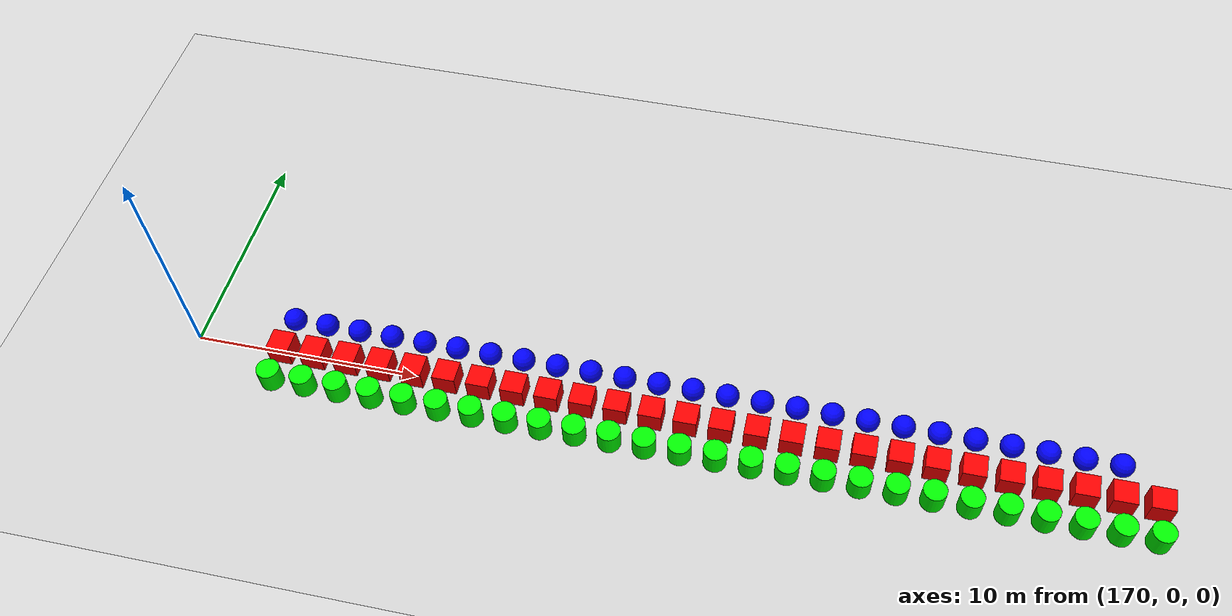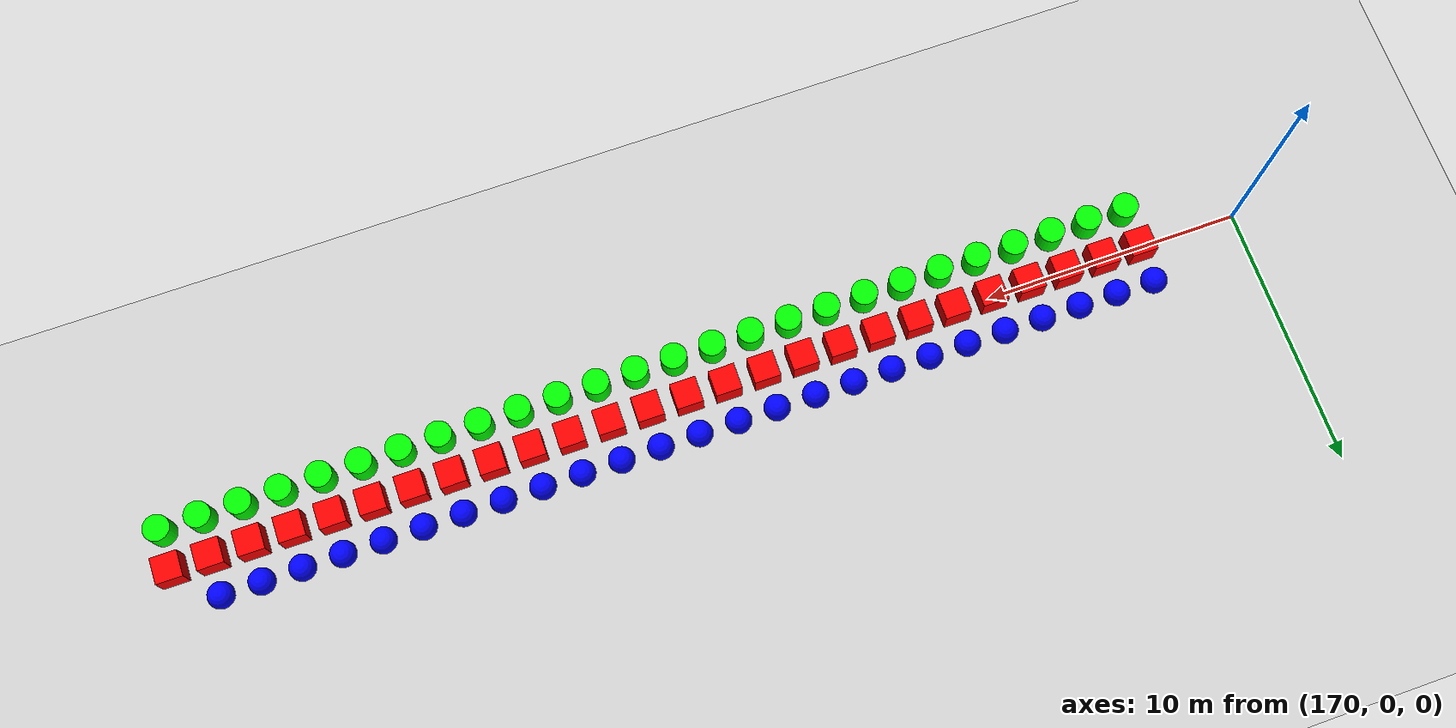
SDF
<sdf version="1.6">
 <world name="shapes">
  <model name="ground_plane">
   <static>true</static>
   <link name="link">
    <collision name="collision">
     <geometry><plane><normal>0 0 1</normal><size>100 100</size></plane></geometry>
    </collision>
    <visual name="visual">
     <geometry><plane><normal>0 0 1</normal><size>100 100</size></plane></geometry>
     <material>
      <ambient>0.8 0.8 0.8 1</ambient>
      <diffuse>0.8 0.8 0.8 1</diffuse>
      <specular>0.8 0.8 0.8 1</specular>
     </material>
    </visual>
   </link>
  </model>
  <model name="box_616">
   <static>false</static>
   <pose>174.0 0 0.5 0 0 0</pose>
   <link name="box_link">
    <inertial>
     <inertia><ixx>1</ixx><ixy>0</ixy><ixz>0</ixz><iyy>1</iyy><iyz>0</iyz><izz>1</izz></inertia>
     <mass>1.0</mass>
    </inertial>
    <collision name="box_collision"><geometry><box><size>1 1 1</size></box></geometry></collision>
    <visual name="box_visual">
     <geometry><box><size>1 1 1</size></box></geometry>
     <material><ambient>1 0 0 1</ambient><diffuse>1 0 0 1</diffuse><specular>1 0 0 1</specular></material>
    </visual>
   </link>
  </model>
  <model name="cylinder_616">
   <static>false</static>
   <pose>174.0 -1.5 0.5 0 0 0</pose>
   <link name="cylinder_link">
    <inertial>
     <inertia><ixx>2</ixx><ixy>0</ixy><ixz>0</ixz><iyy>2</iyy><iyz>0</iyz><izz>2</izz></inertia>
     <mass>2.0</mass>
    </inertial>
    <collision name="cylinder_collision">
     <geometry><cylinder><radius>0.5</radius><length>1.0</length></cylinder></geometry>
    </collision>
    <visual name="cylinder_visual">
     <geometry><cylinder><radius>0.5</radius><length>1.0</length></cylinder></geometry>
     <material><ambient>0 1 0 1</ambient><diffuse>0 1 0 1</diffuse><specular>0 1 0 1</specular></material>
    </visual>
   </link>
  </model>
  <model name="sphere_616">
   <static>false</static>
   <pose>174.0 1.5 0.5 0 0 0</pose>
   <link name="sphere_link">
    <inertial>
     <inertia><ixx>3</ixx><ixy>0</ixy><ixz>0</ixz><iyy>3</iyy><iyz>0</iyz><izz>3</izz></inertia>
     <mass>3.0</mass>
    </inertial>
    <collision name="sphere_collision"><geometry><sphere><radius>0.5</radius></sphere></geometry></collision>
    <visual name="sphere_visual">
     <geometry><sphere><radius>0.5</radius></sphere></geometry>
     <material><ambient>0 0 1 1</ambient><diffuse>0 0 1 1</diffuse><specular>0 0 1 1</specular></material>
    </visual>
   </link>
  </model>
  <model name="box_617">
   <static>false</static>
   <pose>175.5 0 0.5 0 0 0</pose>
   <link name="box_link">
    <inertial>
     <inertia><ixx>1</ixx><ixy>0</ixy><ixz>0</ixz><iyy>1</iyy><iyz>0</iyz><izz>1</izz></inertia>
     <mass>1.0</mass>
    </inertial>
    <collision name="box_collision"><geometry><box><size>1 1 1</size></box></geometry></collision>
    <visual name="box_visual">
     <geometry><box><size>1 1 1</size></box></geometry>
     <material><ambient>1 0 0 1</ambient><diffuse>1 0 0 1</diffuse><specular>1 0 0 1</specular></material>
    </visual>
   </link>
  </model>
  <model name="cylinder_617">
   <static>false</static>
   <pose>175.5 -1.5 0.5 0 0 0</pose>
   <link name="cylinder_link">
    <inertial>
     <inertia><ixx>2</ixx><ixy>0</ixy><ixz>0</ixz><iyy>2</iyy><iyz>0</iyz><izz>2</izz></inertia>
     <mass>2.0</mass>
    </inertial>
    <collision name="cylinder_collision">
     <geometry><cylinder><radius>0.5</radius><length>1.0</length></cylinder></geometry>
    </collision>
    <visual name="cylinder_visual">
     <geometry><cylinder><radius>0.5</radius><length>1.0</length></cylinder></geometry>
     <material><ambient>0 1 0 1</ambient><diffuse>0 1 0 1</diffuse><specular>0 1 0 1</specular></material>
    </visual>
   </link>
  </model>
  <model name="sphere_617">
   <static>false</static>
   <pose>175.5 1.5 0.5 0 0 0</pose>
   <link name="sphere_link">
    <inertial>
     <inertia><ixx>3</ixx><ixy>0</ixy><ixz>0</ixz><iyy>3</iyy><iyz>0</iyz><izz>3</izz></inertia>
     <mass>3.0</mass>
    </inertial>
    <collision name="sphere_collision"><geometry><sphere><radius>0.5</radius></sphere></geometry></collision>
    <visual name="sphere_visual">
     <geometry><sphere><radius>0.5</radius></sphere></geometry>
     <material><ambient>0 0 1 1</ambient><diffuse>0 0 1 1</diffuse><specular>0 0 1 1</specular></material>
    </visual>
   </link>
  </model>
  <model name="box_618">
   <static>false</static>
   <pose>177.0 0 0.5 0 0 0</pose>
   <link name="box_link">
    <inertial>
     <inertia><ixx>1</ixx><ixy>0</ixy><ixz>0</ixz><iyy>1</iyy><iyz>0</iyz><izz>1</izz></inertia>
     <mass>1.0</mass>
    </inertial>
    <collision name="box_collision"><geometry><box><size>1 1 1</size></box></geometry></collision>
    <visual name="box_visual">
     <geometry><box><size>1 1 1</size></box></geometry>
     <material><ambient>1 0 0 1</ambient><diffuse>1 0 0 1</diffuse><specular>1 0 0 1</specular></material>
    </visual>
   </link>
  </model>
  <model name="cylinder_618">
   <static>false</static>
   <pose>177.0 -1.5 0.5 0 0 0</pose>
   <link name="cylinder_link">
    <inertial>
     <inertia><ixx>2</ixx><ixy>0</ixy><ixz>0</ixz><iyy>2</iyy><iyz>0</iyz><izz>2</izz></inertia>
     <mass>2.0</mass>
    </inertial>
    <collision name="cylinder_collision">
     <geometry><cylinder><radius>0.5</radius><length>1.0</length></cylinder></geometry>
    </collision>
    <visual name="cylinder_visual">
     <geometry><cylinder><radius>0.5</radius><length>1.0</length></cylinder></geometry>
     <material><ambient>0 1 0 1</ambient><diffuse>0 1 0 1</diffuse><specular>0 1 0 1</specular></material>
    </visual>
   </link>
  </model>
  <model name="sphere_618">
   <static>false</static>
   <pose>177.0 1.5 0.5 0 0 0</pose>
   <link name="sphere_link">
    <inertial>
     <inertia><ixx>3</ixx><ixy>0</ixy><ixz>0</ixz><iyy>3</iyy><iyz>0</iyz><izz>3</izz></inertia>
     <mass>3.0</mass>
    </inertial>
    <collision name="sphere_collision"><geometry><sphere><radius>0.5</radius></sphere></geometry></collision>
    <visual name="sphere_visual">
     <geometry><sphere><radius>0.5</radius></sphere></geometry>
     <material><ambient>0 0 1 1</ambient><diffuse>0 0 1 1</diffuse><specular>0 0 1 1</specular></material>
    </visual>
   </link>
  </model>
  <model name="box_619">
   <static>false</static>
   <pose>178.5 0 0.5 0 0 0</pose>
   <link name="box_link">
    <inertial>
     <inertia><ixx>1</ixx><ixy>0</ixy><ixz>0</ixz><iyy>1</iyy><iyz>0</iyz><izz>1</izz></inertia>
     <mass>1.0</mass>
    </inertial>
    <collision name="box_collision"><geometry><box><size>1 1 1</size></box></geometry></collision>
    <visual name="box_visual">
     <geometry><box><size>1 1 1</size></box></geometry>
     <material><ambient>1 0 0 1</ambient><diffuse>1 0 0 1</diffuse><specular>1 0 0 1</specular></material>
    </visual>
   </link>
  </model>
  <model name="cylinder_619">
   <static>false</static>
   <pose>178.5 -1.5 0.5 0 0 0</pose>
   <link name="cylinder_link">
    <inertial>
     <inertia><ixx>2</ixx><ixy>0</ixy><ixz>0</ixz><iyy>2</iyy><iyz>0</iyz><izz>2</izz></inertia>
     <mass>2.0</mass>
    </inertial>
    <collision name="cylinder_collision">
     <geometry><cylinder><radius>0.5</radius><length>1.0</length></cylinder></geometry>
    </collision>
    <visual name="cylinder_visual">
     <geometry><cylinder><radius>0.5</radius><length>1.0</length></cylinder></geometry>
     <material><ambient>0 1 0 1</ambient><diffuse>0 1 0 1</diffuse><specular>0 1 0 1</specular></material>
    </visual>
   </link>
  </model>
  <model name="sphere_619">
   <static>false</static>
   <pose>178.5 1.5 0.5 0 0 0</pose>
   <link name="sphere_link">
    <inertial>
     <inertia><ixx>3</ixx><ixy>0</ixy><ixz>0</ixz><iyy>3</iyy><iyz>0</iyz><izz>3</izz></inertia>
     <mass>3.0</mass>
    </inertial>
    <collision name="sphere_collision"><geometry><sphere><radius>0.5</radius></sphere></geometry></collision>
    <visual name="sphere_visual">
     <geometry><sphere><radius>0.5</radius></sphere></geometry>
     <material><ambient>0 0 1 1</ambient><diffuse>0 0 1 1</diffuse><specular>0 0 1 1</specular></material>
    </visual>
   </link>
  </model>
  <model name="box_620">
   <static>false</static>
   <pose>180.0 0 0.5 0 0 0</pose>
   <link name="box_link">
    <inertial>
     <inertia><ixx>1</ixx><ixy>0</ixy><ixz>0</ixz><iyy>1</iyy><iyz>0</iyz><izz>1</izz></inertia>
     <mass>1.0</mass>
    </inertial>
    <collision name="box_collision"><geometry><box><size>1 1 1</size></box></geometry></collision>
    <visual name="box_visual">
     <geometry><box><size>1 1 1</size></box></geometry>
     <material><ambient>1 0 0 1</ambient><diffuse>1 0 0 1</diffuse><specular>1 0 0 1</specular></material>
    </visual>
   </link>
  </model>
  <model name="cylinder_620">
   <static>false</static>
   <pose>180.0 -1.5 0.5 0 0 0</pose>
   <link name="cylinder_link">
    <inertial>
     <inertia><ixx>2</ixx><ixy>0</ixy><ixz>0</ixz><iyy>2</iyy><iyz>0</iyz><izz>2</izz></inertia>
     <mass>2.0</mass>
    </inertial>
    <collision name="cylinder_collision">
     <geometry><cylinder><radius>0.5</radius><length>1.0</length></cylinder></geometry>
    </collision>
    <visual name="cylinder_visual">
     <geometry><cylinder><radius>0.5</radius><length>1.0</length></cylinder></geometry>
     <material><ambient>0 1 0 1</ambient><diffuse>0 1 0 1</diffuse><specular>0 1 0 1</specular></material>
    </visual>
   </link>
  </model>
  <model name="sphere_620">
   <static>false</static>
   <pose>180.0 1.5 0.5 0 0 0</pose>
   <link name="sphere_link">
    <inertial>
     <inertia><ixx>3</ixx><ixy>0</ixy><ixz>0</ixz><iyy>3</iyy><iyz>0</iyz><izz>3</izz></inertia>
     <mass>3.0</mass>
    </inertial>
    <collision name="sphere_collision"><geometry><sphere><radius>0.5</radius></sphere></geometry></collision>
    <visual name="sphere_visual">
     <geometry><sphere><radius>0.5</radius></sphere></geometry>
     <material><ambient>0 0 1 1</ambient><diffuse>0 0 1 1</diffuse><specular>0 0 1 1</specular></material>
    </visual>
   </link>
  </model>
  <model name="box_621">
   <static>false</static>
   <pose>181.5 0 0.5 0 0 0</pose>
   <link name="box_link">
    <inertial>
     <inertia><ixx>1</ixx><ixy>0</ixy><ixz>0</ixz><iyy>1</iyy><iyz>0</iyz><izz>1</izz></inertia>
     <mass>1.0</mass>
    </inertial>
    <collision name="box_collision"><geometry><box><size>1 1 1</size></box></geometry></collision>
    <visual name="box_visual">
     <geometry><box><size>1 1 1</size></box></geometry>
     <material><ambient>1 0 0 1</ambient><diffuse>1 0 0 1</diffuse><specular>1 0 0 1</specular></material>
    </visual>
   </link>
  </model>
  <model name="cylinder_621">
   <static>false</static>
   <pose>181.5 -1.5 0.5 0 0 0</pose>
   <link name="cylinder_link">
    <inertial>
     <inertia><ixx>2</ixx><ixy>0</ixy><ixz>0</ixz><iyy>2</iyy><iyz>0</iyz><izz>2</izz></inertia>
     <mass>2.0</mass>
    </inertial>
    <collision name="cylinder_collision">
     <geometry><cylinder><radius>0.5</radius><length>1.0</length></cylinder></geometry>
    </collision>
    <visual name="cylinder_visual">
     <geometry><cylinder><radius>0.5</radius><length>1.0</length></cylinder></geometry>
     <material><ambient>0 1 0 1</ambient><diffuse>0 1 0 1</diffuse><specular>0 1 0 1</specular></material>
    </visual>
   </link>
  </model>
  <model name="sphere_621">
   <static>false</static>
   <pose>181.5 1.5 0.5 0 0 0</pose>
   <link name="sphere_link">
    <inertial>
     <inertia><ixx>3</ixx><ixy>0</ixy><ixz>0</ixz><iyy>3</iyy><iyz>0</iyz><izz>3</izz></inertia>
     <mass>3.0</mass>
    </inertial>
    <collision name="sphere_collision"><geometry><sphere><radius>0.5</radius></sphere></geometry></collision>
    <visual name="sphere_visual">
     <geometry><sphere><radius>0.5</radius></sphere></geometry>
     <material><ambient>0 0 1 1</ambient><diffuse>0 0 1 1</diffuse><specular>0 0 1 1</specular></material>
    </visual>
   </link>
  </model>
  <model name="box_622">
   <static>false</static>
   <pose>183.0 0 0.5 0 0 0</pose>
   <link name="box_link">
    <inertial>
     <inertia><ixx>1</ixx><ixy>0</ixy><ixz>0</ixz><iyy>1</iyy><iyz>0</iyz><izz>1</izz></inertia>
     <mass>1.0</mass>
    </inertial>
    <collision name="box_collision"><geometry><box><size>1 1 1</size></box></geometry></collision>
    <visual name="box_visual">
     <geometry><box><size>1 1 1</size></box></geometry>
     <material><ambient>1 0 0 1</ambient><diffuse>1 0 0 1</diffuse><specular>1 0 0 1</specular></material>
    </visual>
   </link>
  </model>
  <model name="cylinder_622">
   <static>false</static>
   <pose>183.0 -1.5 0.5 0 0 0</pose>
   <link name="cylinder_link">
    <inertial>
     <inertia><ixx>2</ixx><ixy>0</ixy><ixz>0</ixz><iyy>2</iyy><iyz>0</iyz><izz>2</izz></inertia>
     <mass>2.0</mass>
    </inertial>
    <collision name="cylinder_collision">
     <geometry><cylinder><radius>0.5</radius><length>1.0</length></cylinder></geometry>
    </collision>
    <visual name="cylinder_visual">
     <geometry><cylinder><radius>0.5</radius><length>1.0</length></cylinder></geometry>
     <material><ambient>0 1 0 1</ambient><diffuse>0 1 0 1</diffuse><specular>0 1 0 1</specular></material>
    </visual>
   </link>
  </model>
  <model name="sphere_622">
   <static>false</static>
   <pose>183.0 1.5 0.5 0 0 0</pose>
   <link name="sphere_link">
    <inertial>
     <inertia><ixx>3</ixx><ixy>0</ixy><ixz>0</ixz><iyy>3</iyy><iyz>0</iyz><izz>3</izz></inertia>
     <mass>3.0</mass>
    </inertial>
    <collision name="sphere_collision"><geometry><sphere><radius>0.5</radius></sphere></geometry></collision>
    <visual name="sphere_visual">
     <geometry><sphere><radius>0.5</radius></sphere></geometry>
     <material><ambient>0 0 1 1</ambient><diffuse>0 0 1 1</diffuse><specular>0 0 1 1</specular></material>
    </visual>
   </link>
  </model>
  <model name="box_623">
   <static>false</static>
   <pose>184.5 0 0.5 0 0 0</pose>
   <link name="box_link">
    <inertial>
     <inertia><ixx>1</ixx><ixy>0</ixy><ixz>0</ixz><iyy>1</iyy><iyz>0</iyz><izz>1</izz></inertia>
     <mass>1.0</mass>
    </inertial>
    <collision name="box_collision"><geometry><box><size>1 1 1</size></box></geometry></collision>
    <visual name="box_visual">
     <geometry><box><size>1 1 1</size></box></geometry>
     <material><ambient>1 0 0 1</ambient><diffuse>1 0 0 1</diffuse><specular>1 0 0 1</specular></material>
    </visual>
   </link>
  </model>
  <model name="cylinder_623">
   <static>false</static>
   <pose>184.5 -1.5 0.5 0 0 0</pose>
   <link name="cylinder_link">
    <inertial>
     <inertia><ixx>2</ixx><ixy>0</ixy><ixz>0</ixz><iyy>2</iyy><iyz>0</iyz><izz>2</izz></inertia>
     <mass>2.0</mass>
    </inertial>
    <collision name="cylinder_collision">
     <geometry><cylinder><radius>0.5</radius><length>1.0</length></cylinder></geometry>
    </collision>
    <visual name="cylinder_visual">
     <geometry><cylinder><radius>0.5</radius><length>1.0</length></cylinder></geometry>
     <material><ambient>0 1 0 1</ambient><diffuse>0 1 0 1</diffuse><specular>0 1 0 1</specular></material>
    </visual>
   </link>
  </model>
  <model name="sphere_623">
   <static>false</static>
   <pose>184.5 1.5 0.5 0 0 0</pose>
   <link name="sphere_link">
    <inertial>
     <inertia><ixx>3</ixx><ixy>0</ixy><ixz>0</ixz><iyy>3</iyy><iyz>0</iyz><izz>3</izz></inertia>
     <mass>3.0</mass>
    </inertial>
    <collision name="sphere_collision"><geometry><sphere><radius>0.5</radius></sphere></geometry></collision>
    <visual name="sphere_visual">
     <geometry><sphere><radius>0.5</radius></sphere></geometry>
     <material><ambient>0 0 1 1</ambient><diffuse>0 0 1 1</diffuse><specular>0 0 1 1</specular></material>
    </visual>
   </link>
  </model>
  <model name="box_624">
   <static>false</static>
   <pose>186.0 0 0.5 0 0 0</pose>
   <link name="box_link">
    <inertial>
     <inertia><ixx>1</ixx><ixy>0</ixy><ixz>0</ixz><iyy>1</iyy><iyz>0</iyz><izz>1</izz></inertia>
     <mass>1.0</mass>
    </inertial>
    <collision name="box_collision"><geometry><box><size>1 1 1</size></box></geometry></collision>
    <visual name="box_visual">
     <geometry><box><size>1 1 1</size></box></geometry>
     <material><ambient>1 0 0 1</ambient><diffuse>1 0 0 1</diffuse><specular>1 0 0 1</specular></material>
    </visual>
   </link>
  </model>
  <model name="cylinder_624">
   <static>false</static>
   <pose>186.0 -1.5 0.5 0 0 0</pose>
   <link name="cylinder_link">
    <inertial>
     <inertia><ixx>2</ixx><ixy>0</ixy><ixz>0</ixz><iyy>2</iyy><iyz>0</iyz><izz>2</izz></inertia>
     <mass>2.0</mass>
    </inertial>
    <collision name="cylinder_collision">
     <geometry><cylinder><radius>0.5</radius><length>1.0</length></cylinder></geometry>
    </collision>
    <visual name="cylinder_visual">
     <geometry><cylinder><radius>0.5</radius><length>1.0</length></cylinder></geometry>
     <material><ambient>0 1 0 1</ambient><diffuse>0 1 0 1</diffuse><specular>0 1 0 1</specular></material>
    </visual>
   </link>
  </model>
  <model name="sphere_624">
   <static>false</static>
   <pose>186.0 1.5 0.5 0 0 0</pose>
   <link name="sphere_link">
    <inertial>
     <inertia><ixx>3</ixx><ixy>0</ixy><ixz>0</ixz><iyy>3</iyy><iyz>0</iyz><izz>3</izz></inertia>
     <mass>3.0</mass>
    </inertial>
    <collision name="sphere_collision"><geometry><sphere><radius>0.5</radius></sphere></geometry></collision>
    <visual name="sphere_visual">
     <geometry><sphere><radius>0.5</radius></sphere></geometry>
     <material><ambient>0 0 1 1</ambient><diffuse>0 0 1 1</diffuse><specular>0 0 1 1</specular></material>
    </visual>
   </link>
  </model>
  <model name="box_625">
   <static>false</static>
   <pose>187.5 0 0.5 0 0 0</pose>
   <link name="box_link">
    <inertial>
     <inertia><ixx>1</ixx><ixy>0</ixy><ixz>0</ixz><iyy>1</iyy><iyz>0</iyz><izz>1</izz></inertia>
     <mass>1.0</mass>
    </inertial>
    <collision name="box_collision"><geometry><box><size>1 1 1</size></box></geometry></collision>
    <visual name="box_visual">
     <geometry><box><size>1 1 1</size></box></geometry>
     <material><ambient>1 0 0 1</ambient><diffuse>1 0 0 1</diffuse><specular>1 0 0 1</specular></material>
    </visual>
   </link>
  </model>
  <model name="cylinder_625">
   <static>false</static>
   <pose>187.5 -1.5 0.5 0 0 0</pose>
   <link name="cylinder_link">
    <inertial>
     <inertia><ixx>2</ixx><ixy>0</ixy><ixz>0</ixz><iyy>2</iyy><iyz>0</iyz><izz>2</izz></inertia>
     <mass>2.0</mass>
    </inertial>
    <collision name="cylinder_collision">
     <geometry><cylinder><radius>0.5</radius><length>1.0</length></cylinder></geometry>
    </collision>
    <visual name="cylinder_visual">
     <geometry><cylinder><radius>0.5</radius><length>1.0</length></cylinder></geometry>
     <material><ambient>0 1 0 1</ambient><diffuse>0 1 0 1</diffuse><specular>0 1 0 1</specular></material>
    </visual>
   </link>
  </model>
  <model name="sphere_625">
   <static>false</static>
   <pose>187.5 1.5 0.5 0 0 0</pose>
   <link name="sphere_link">
    <inertial>
     <inertia><ixx>3</ixx><ixy>0</ixy><ixz>0</ixz><iyy>3</iyy><iyz>0</iyz><izz>3</izz></inertia>
     <mass>3.0</mass>
    </inertial>
    <collision name="sphere_collision"><geometry><sphere><radius>0.5</radius></sphere></geometry></collision>
    <visual name="sphere_visual">
     <geometry><sphere><radius>0.5</radius></sphere></geometry>
     <material><ambient>0 0 1 1</ambient><diffuse>0 0 1 1</diffuse><specular>0 0 1 1</specular></material>
    </visual>
   </link>
  </model>
  <model name="box_626">
   <static>false</static>
   <pose>189.0 0 0.5 0 0 0</pose>
   <link name="box_link">
    <inertial>
     <inertia><ixx>1</ixx><ixy>0</ixy><ixz>0</ixz><iyy>1</iyy><iyz>0</iyz><izz>1</izz></inertia>
     <mass>1.0</mass>
    </inertial>
    <collision name="box_collision"><geometry><box><size>1 1 1</size></box></geometry></collision>
    <visual name="box_visual">
     <geometry><box><size>1 1 1</size></box></geometry>
     <material><ambient>1 0 0 1</ambient><diffuse>1 0 0 1</diffuse><specular>1 0 0 1</specular></material>
    </visual>
   </link>
  </model>
  <model name="cylinder_626">
   <static>false</static>
   <pose>189.0 -1.5 0.5 0 0 0</pose>
   <link name="cylinder_link">
    <inertial>
     <inertia><ixx>2</ixx><ixy>0</ixy><ixz>0</ixz><iyy>2</iyy><iyz>0</iyz><izz>2</izz></inertia>
     <mass>2.0</mass>
    </inertial>
    <collision name="cylinder_collision">
     <geometry><cylinder><radius>0.5</radius><length>1.0</length></cylinder></geometry>
    </collision>
    <visual name="cylinder_visual">
     <geometry><cylinder><radius>0.5</radius><length>1.0</length></cylinder></geometry>
     <material><ambient>0 1 0 1</ambient><diffuse>0 1 0 1</diffuse><specular>0 1 0 1</specular></material>
    </visual>
   </link>
  </model>
  <model name="sphere_626">
   <static>false</static>
   <pose>189.0 1.5 0.5 0 0 0</pose>
   <link name="sphere_link">
    <inertial>
     <inertia><ixx>3</ixx><ixy>0</ixy><ixz>0</ixz><iyy>3</iyy><iyz>0</iyz><izz>3</izz></inertia>
     <mass>3.0</mass>
    </inertial>
    <collision name="sphere_collision"><geometry><sphere><radius>0.5</radius></sphere></geometry></collision>
    <visual name="sphere_visual">
     <geometry><sphere><radius>0.5</radius></sphere></geometry>
     <material><ambient>0 0 1 1</ambient><diffuse>0 0 1 1</diffuse><specular>0 0 1 1</specular></material>
    </visual>
   </link>
  </model>
  <model name="box_627">
   <static>false</static>
   <pose>190.5 0 0.5 0 0 0</pose>
   <link name="box_link">
    <inertial>
     <inertia><ixx>1</ixx><ixy>0</ixy><ixz>0</ixz><iyy>1</iyy><iyz>0</iyz><izz>1</izz></inertia>
     <mass>1.0</mass>
    </inertial>
    <collision name="box_collision"><geometry><box><size>1 1 1</size></box></geometry></collision>
    <visual name="box_visual">
     <geometry><box><size>1 1 1</size></box></geometry>
     <material><ambient>1 0 0 1</ambient><diffuse>1 0 0 1</diffuse><specular>1 0 0 1</specular></material>
    </visual>
   </link>
  </model>
  <model name="cylinder_627">
   <static>false</static>
   <pose>190.5 -1.5 0.5 0 0 0</pose>
   <link name="cylinder_link">
    <inertial>
     <inertia><ixx>2</ixx><ixy>0</ixy><ixz>0</ixz><iyy>2</iyy><iyz>0</iyz><izz>2</izz></inertia>
     <mass>2.0</mass>
    </inertial>
    <collision name="cylinder_collision">
     <geometry><cylinder><radius>0.5</radius><length>1.0</length></cylinder></geometry>
    </collision>
    <visual name="cylinder_visual">
     <geometry><cylinder><radius>0.5</radius><length>1.0</length></cylinder></geometry>
     <material><ambient>0 1 0 1</ambient><diffuse>0 1 0 1</diffuse><specular>0 1 0 1</specular></material>
    </visual>
   </link>
  </model>
  <model name="sphere_627">
   <static>false</static>
   <pose>190.5 1.5 0.5 0 0 0</pose>
   <link name="sphere_link">
    <inertial>
     <inertia><ixx>3</ixx><ixy>0</ixy><ixz>0</ixz><iyy>3</iyy><iyz>0</iyz><izz>3</izz></inertia>
     <mass>3.0</mass>
    </inertial>
    <collision name="sphere_collision"><geometry><sphere><radius>0.5</radius></sphere></geometry></collision>
    <visual name="sphere_visual">
     <geometry><sphere><radius>0.5</radius></sphere></geometry>
     <material><ambient>0 0 1 1</ambient><diffuse>0 0 1 1</diffuse><specular>0 0 1 1</specular></material>
    </visual>
   </link>
  </model>
  <model name="box_628">
   <static>false</static>
   <pose>192.0 0 0.5 0 0 0</pose>
   <link name="box_link">
    <inertial>
     <inertia><ixx>1</ixx><ixy>0</ixy><ixz>0</ixz><iyy>1</iyy><iyz>0</iyz><izz>1</izz></inertia>
     <mass>1.0</mass>
    </inertial>
    <collision name="box_collision"><geometry><box><size>1 1 1</size></box></geometry></collision>
    <visual name="box_visual">
     <geometry><box><size>1 1 1</size></box></geometry>
     <material><ambient>1 0 0 1</ambient><diffuse>1 0 0 1</diffuse><specular>1 0 0 1</specular></material>
    </visual>
   </link>
  </model>
  <model name="cylinder_628">
   <static>false</static>
   <pose>192.0 -1.5 0.5 0 0 0</pose>
   <link name="cylinder_link">
    <inertial>
     <inertia><ixx>2</ixx><ixy>0</ixy><ixz>0</ixz><iyy>2</iyy><iyz>0</iyz><izz>2</izz></inertia>
     <mass>2.0</mass>
    </inertial>
    <collision name="cylinder_collision">
     <geometry><cylinder><radius>0.5</radius><length>1.0</length></cylinder></geometry>
    </collision>
    <visual name="cylinder_visual">
     <geometry><cylinder><radius>0.5</radius><length>1.0</length></cylinder></geometry>
     <material><ambient>0 1 0 1</ambient><diffuse>0 1 0 1</diffuse><specular>0 1 0 1</specular></material>
    </visual>
   </link>
  </model>
  <model name="sphere_628">
   <static>false</static>
   <pose>192.0 1.5 0.5 0 0 0</pose>
   <link name="sphere_link">
    <inertial>
     <inertia><ixx>3</ixx><ixy>0</ixy><ixz>0</ixz><iyy>3</iyy><iyz>0</iyz><izz>3</izz></inertia>
     <mass>3.0</mass>
    </inertial>
    <collision name="sphere_collision"><geometry><sphere><radius>0.5</radius></sphere></geometry></collision>
    <visual name="sphere_visual">
     <geometry><sphere><radius>0.5</radius></sphere></geometry>
     <material><ambient>0 0 1 1</ambient><diffuse>0 0 1 1</diffuse><specular>0 0 1 1</specular></material>
    </visual>
   </link>
  </model>
  <model name="box_629">
   <static>false</static>
   <pose>193.5 0 0.5 0 0 0</pose>
   <link name="box_link">
    <inertial>
     <inertia><ixx>1</ixx><ixy>0</ixy><ixz>0</ixz><iyy>1</iyy><iyz>0</iyz><izz>1</izz></inertia>
     <mass>1.0</mass>
    </inertial>
    <collision name="box_collision"><geometry><box><size>1 1 1</size></box></geometry></collision>
    <visual name="box_visual">
     <geometry><box><size>1 1 1</size></box></geometry>
     <material><ambient>1 0 0 1</ambient><diffuse>1 0 0 1</diffuse><specular>1 0 0 1</specular></material>
    </visual>
   </link>
  </model>
  <model name="cylinder_629">
   <static>false</static>
   <pose>193.5 -1.5 0.5 0 0 0</pose>
   <link name="cylinder_link">
    <inertial>
     <inertia><ixx>2</ixx><ixy>0</ixy><ixz>0</ixz><iyy>2</iyy><iyz>0</iyz><izz>2</izz></inertia>
     <mass>2.0</mass>
    </inertial>
    <collision name="cylinder_collision">
     <geometry><cylinder><radius>0.5</radius><length>1.0</length></cylinder></geometry>
    </collision>
    <visual name="cylinder_visual">
     <geometry><cylinder><radius>0.5</radius><length>1.0</length></cylinder></geometry>
     <material><ambient>0 1 0 1</ambient><diffuse>0 1 0 1</diffuse><specular>0 1 0 1</specular></material>
    </visual>
   </link>
  </model>
  <model name="sphere_629">
   <static>false</static>
   <pose>193.5 1.5 0.5 0 0 0</pose>
   <link name="sphere_link">
    <inertial>
     <inertia><ixx>3</ixx><ixy>0</ixy><ixz>0</ixz><iyy>3</iyy><iyz>0</iyz><izz>3</izz></inertia>
     <mass>3.0</mass>
    </inertial>
    <collision name="sphere_collision"><geometry><sphere><radius>0.5</radius></sphere></geometry></collision>
    <visual name="sphere_visual">
     <geometry><sphere><radius>0.5</radius></sphere></geometry>
     <material><ambient>0 0 1 1</ambient><diffuse>0 0 1 1</diffuse><specular>0 0 1 1</specular></material>
    </visual>
   </link>
  </model>
  <model name="box_630">
   <static>false</static>
   <pose>195.0 0 0.5 0 0 0</pose>
   <link name="box_link">
    <inertial>
     <inertia><ixx>1</ixx><ixy>0</ixy><ixz>0</ixz><iyy>1</iyy><iyz>0</iyz><izz>1</izz></inertia>
     <mass>1.0</mass>
    </inertial>
    <collision name="box_collision"><geometry><box><size>1 1 1</size></box></geometry></collision>
    <visual name="box_visual">
     <geometry><box><size>1 1 1</size></box></geometry>
     <material><ambient>1 0 0 1</ambient><diffuse>1 0 0 1</diffuse><specular>1 0 0 1</specular></material>
    </visual>
   </link>
  </model>
  <model name="cylinder_630">
   <static>false</static>
   <pose>195.0 -1.5 0.5 0 0 0</pose>
   <link name="cylinder_link">
    <inertial>
     <inertia><ixx>2</ixx><ixy>0</ixy><ixz>0</ixz><iyy>2</iyy><iyz>0</iyz><izz>2</izz></inertia>
     <mass>2.0</mass>
    </inertial>
    <collision name="cylinder_collision">
     <geometry><cylinder><radius>0.5</radius><length>1.0</length></cylinder></geometry>
    </collision>
    <visual name="cylinder_visual">
     <geometry><cylinder><radius>0.5</radius><length>1.0</length></cylinder></geometry>
     <material><ambient>0 1 0 1</ambient><diffuse>0 1 0 1</diffuse><specular>0 1 0 1</specular></material>
    </visual>
   </link>
  </model>
  <model name="sphere_630">
   <static>false</static>
   <pose>195.0 1.5 0.5 0 0 0</pose>
   <link name="sphere_link">
    <inertial>
     <inertia><ixx>3</ixx><ixy>0</ixy><ixz>0</ixz><iyy>3</iyy><iyz>0</iyz><izz>3</izz></inertia>
     <mass>3.0</mass>
    </inertial>
    <collision name="sphere_collision"><geometry><sphere><radius>0.5</radius></sphere></geometry></collision>
    <visual name="sphere_visual">
     <geometry><sphere><radius>0.5</radius></sphere></geometry>
     <material><ambient>0 0 1 1</ambient><diffuse>0 0 1 1</diffuse><specular>0 0 1 1</specular></material>
    </visual>
   </link>
  </model>
  <model name="box_631">
   <static>false</static>
   <pose>196.5 0 0.5 0 0 0</pose>
   <link name="box_link">
    <inertial>
     <inertia><ixx>1</ixx><ixy>0</ixy><ixz>0</ixz><iyy>1</iyy><iyz>0</iyz><izz>1</izz></inertia>
     <mass>1.0</mass>
    </inertial>
    <collision name="box_collision"><geometry><box><size>1 1 1</size></box></geometry></collision>
    <visual name="box_visual">
     <geometry><box><size>1 1 1</size></box></geometry>
     <material><ambient>1 0 0 1</ambient><diffuse>1 0 0 1</diffuse><specular>1 0 0 1</specular></material>
    </visual>
   </link>
  </model>
  <model name="cylinder_631">
   <static>false</static>
   <pose>196.5 -1.5 0.5 0 0 0</pose>
   <link name="cylinder_link">
    <inertial>
     <inertia><ixx>2</ixx><ixy>0</ixy><ixz>0</ixz><iyy>2</iyy><iyz>0</iyz><izz>2</izz></inertia>
     <mass>2.0</mass>
    </inertial>
    <collision name="cylinder_collision">
     <geometry><cylinder><radius>0.5</radius><length>1.0</length></cylinder></geometry>
    </collision>
    <visual name="cylinder_visual">
     <geometry><cylinder><radius>0.5</radius><length>1.0</length></cylinder></geometry>
     <material><ambient>0 1 0 1</ambient><diffuse>0 1 0 1</diffuse><specular>0 1 0 1</specular></material>
    </visual>
   </link>
  </model>
  <model name="sphere_631">
   <static>false</static>
   <pose>196.5 1.5 0.5 0 0 0</pose>
   <link name="sphere_link">
    <inertial>
     <inertia><ixx>3</ixx><ixy>0</ixy><ixz>0</ixz><iyy>3</iyy><iyz>0</iyz><izz>3</izz></inertia>
     <mass>3.0</mass>
    </inertial>
    <collision name="sphere_collision"><geometry><sphere><radius>0.5</radius></sphere></geometry></collision>
    <visual name="sphere_visual">
     <geometry><sphere><radius>0.5</radius></sphere></geometry>
     <material><ambient>0 0 1 1</ambient><diffuse>0 0 1 1</diffuse><specular>0 0 1 1</specular></material>
    </visual>
   </link>
  </model>
  <model name="box_632">
   <static>false</static>
   <pose>198.0 0 0.5 0 0 0</pose>
   <link name="box_link">
    <inertial>
     <inertia><ixx>1</ixx><ixy>0</ixy><ixz>0</ixz><iyy>1</iyy><iyz>0</iyz><izz>1</izz></inertia>
     <mass>1.0</mass>
    </inertial>
    <collision name="box_collision"><geometry><box><size>1 1 1</size></box></geometry></collision>
    <visual name="box_visual">
     <geometry><box><size>1 1 1</size></box></geometry>
     <material><ambient>1 0 0 1</ambient><diffuse>1 0 0 1</diffuse><specular>1 0 0 1</specular></material>
    </visual>
   </link>
  </model>
  <model name="cylinder_632">
   <static>false</static>
   <pose>198.0 -1.5 0.5 0 0 0</pose>
   <link name="cylinder_link">
    <inertial>
     <inertia><ixx>2</ixx><ixy>0</ixy><ixz>0</ixz><iyy>2</iyy><iyz>0</iyz><izz>2</izz></inertia>
     <mass>2.0</mass>
    </inertial>
    <collision name="cylinder_collision">
     <geometry><cylinder><radius>0.5</radius><length>1.0</length></cylinder></geometry>
    </collision>
    <visual name="cylinder_visual">
     <geometry><cylinder><radius>0.5</radius><length>1.0</length></cylinder></geometry>
     <material><ambient>0 1 0 1</ambient><diffuse>0 1 0 1</diffuse><specular>0 1 0 1</specular></material>
    </visual>
   </link>
  </model>
  <model name="sphere_632">
   <static>false</static>
   <pose>198.0 1.5 0.5 0 0 0</pose>
   <link name="sphere_link">
    <inertial>
     <inertia><ixx>3</ixx><ixy>0</ixy><ixz>0</ixz><iyy>3</iyy><iyz>0</iyz><izz>3</izz></inertia>
     <mass>3.0</mass>
    </inertial>
    <collision name="sphere_collision"><geometry><sphere><radius>0.5</radius></sphere></geometry></collision>
    <visual name="sphere_visual">
     <geometry><sphere><radius>0.5</radius></sphere></geometry>
     <material><ambient>0 0 1 1</ambient><diffuse>0 0 1 1</diffuse><specular>0 0 1 1</specular></material>
    </visual>
   </link>
  </model>
  <model name="box_633">
   <static>false</static>
   <pose>199.5 0 0.5 0 0 0</pose>
   <link name="box_link">
    <inertial>
     <inertia><ixx>1</ixx><ixy>0</ixy><ixz>0</ixz><iyy>1</iyy><iyz>0</iyz><izz>1</izz></inertia>
     <mass>1.0</mass>
    </inertial>
    <collision name="box_collision"><geometry><box><size>1 1 1</size></box></geometry></collision>
    <visual name="box_visual">
     <geometry><box><size>1 1 1</size></box></geometry>
     <material><ambient>1 0 0 1</ambient><diffuse>1 0 0 1</diffuse><specular>1 0 0 1</specular></material>
    </visual>
   </link>
  </model>
  <model name="cylinder_633">
   <static>false</static>
   <pose>199.5 -1.5 0.5 0 0 0</pose>
   <link name="cylinder_link">
    <inertial>
     <inertia><ixx>2</ixx><ixy>0</ixy><ixz>0</ixz><iyy>2</iyy><iyz>0</iyz><izz>2</izz></inertia>
     <mass>2.0</mass>
    </inertial>
    <collision name="cylinder_collision">
     <geometry><cylinder><radius>0.5</radius><length>1.0</length></cylinder></geometry>
    </collision>
    <visual name="cylinder_visual">
     <geometry><cylinder><radius>0.5</radius><length>1.0</length></cylinder></geometry>
     <material><ambient>0 1 0 1</ambient><diffuse>0 1 0 1</diffuse><specular>0 1 0 1</specular></material>
    </visual>
   </link>
  </model>
  <model name="sphere_633">
   <static>false</static>
   <pose>199.5 1.5 0.5 0 0 0</pose>
   <link name="sphere_link">
    <inertial>
     <inertia><ixx>3</ixx><ixy>0</ixy><ixz>0</ixz><iyy>3</iyy><iyz>0</iyz><izz>3</izz></inertia>
     <mass>3.0</mass>
    </inertial>
    <collision name="sphere_collision"><geometry><sphere><radius>0.5</radius></sphere></geometry></collision>
    <visual name="sphere_visual">
     <geometry><sphere><radius>0.5</radius></sphere></geometry>
     <material><ambient>0 0 1 1</ambient><diffuse>0 0 1 1</diffuse><specular>0 0 1 1</specular></material>
    </visual>
   </link>
  </model>
  <model name="box_634">
   <static>false</static>
   <pose>201.0 0 0.5 0 0 0</pose>
   <link name="box_link">
    <inertial>
     <inertia><ixx>1</ixx><ixy>0</ixy><ixz>0</ixz><iyy>1</iyy><iyz>0</iyz><izz>1</izz></inertia>
     <mass>1.0</mass>
    </inertial>
    <collision name="box_collision"><geometry><box><size>1 1 1</size></box></geometry></collision>
    <visual name="box_visual">
     <geometry><box><size>1 1 1</size></box></geometry>
     <material><ambient>1 0 0 1</ambient><diffuse>1 0 0 1</diffuse><specular>1 0 0 1</specular></material>
    </visual>
   </link>
  </model>
  <model name="cylinder_634">
   <static>false</static>
   <pose>201.0 -1.5 0.5 0 0 0</pose>
   <link name="cylinder_link">
    <inertial>
     <inertia><ixx>2</ixx><ixy>0</ixy><ixz>0</ixz><iyy>2</iyy><iyz>0</iyz><izz>2</izz></inertia>
     <mass>2.0</mass>
    </inertial>
    <collision name="cylinder_collision">
     <geometry><cylinder><radius>0.5</radius><length>1.0</length></cylinder></geometry>
    </collision>
    <visual name="cylinder_visual">
     <geometry><cylinder><radius>0.5</radius><length>1.0</length></cylinder></geometry>
     <material><ambient>0 1 0 1</ambient><diffuse>0 1 0 1</diffuse><specular>0 1 0 1</specular></material>
    </visual>
   </link>
  </model>
  <model name="sphere_634">
   <static>false</static>
   <pose>201.0 1.5 0.5 0 0 0</pose>
   <link name="sphere_link">
    <inertial>
     <inertia><ixx>3</ixx><ixy>0</ixy><ixz>0</ixz><iyy>3</iyy><iyz>0</iyz><izz>3</izz></inertia>
     <mass>3.0</mass>
    </inertial>
    <collision name="sphere_collision"><geometry><sphere><radius>0.5</radius></sphere></geometry></collision>
    <visual name="sphere_visual">
     <geometry><sphere><radius>0.5</radius></sphere></geometry>
     <material><ambient>0 0 1 1</ambient><diffuse>0 0 1 1</diffuse><specular>0 0 1 1</specular></material>
    </visual>
   </link>
  </model>
  <model name="box_635">
   <static>false</static>
   <pose>202.5 0 0.5 0 0 0</pose>
   <link name="box_link">
    <inertial>
     <inertia><ixx>1</ixx><ixy>0</ixy><ixz>0</ixz><iyy>1</iyy><iyz>0</iyz><izz>1</izz></inertia>
     <mass>1.0</mass>
    </inertial>
    <collision name="box_collision"><geometry><box><size>1 1 1</size></box></geometry></collision>
    <visual name="box_visual">
     <geometry><box><size>1 1 1</size></box></geometry>
     <material><ambient>1 0 0 1</ambient><diffuse>1 0 0 1</diffuse><specular>1 0 0 1</specular></material>
    </visual>
   </link>
  </model>
  <model name="cylinder_635">
   <static>false</static>
   <pose>202.5 -1.5 0.5 0 0 0</pose>
   <link name="cylinder_link">
    <inertial>
     <inertia><ixx>2</ixx><ixy>0</ixy><ixz>0</ixz><iyy>2</iyy><iyz>0</iyz><izz>2</izz></inertia>
     <mass>2.0</mass>
    </inertial>
    <collision name="cylinder_collision">
     <geometry><cylinder><radius>0.5</radius><length>1.0</length></cylinder></geometry>
    </collision>
    <visual name="cylinder_visual">
     <geometry><cylinder><radius>0.5</radius><length>1.0</length></cylinder></geometry>
     <material><ambient>0 1 0 1</ambient><diffuse>0 1 0 1</diffuse><specular>0 1 0 1</specular></material>
    </visual>
   </link>
  </model>
  <model name="sphere_635">
   <static>false</static>
   <pose>202.5 1.5 0.5 0 0 0</pose>
   <link name="sphere_link">
    <inertial>
     <inertia><ixx>3</ixx><ixy>0</ixy><ixz>0</ixz><iyy>3</iyy><iyz>0</iyz><izz>3</izz></inertia>
     <mass>3.0</mass>
    </inertial>
    <collision name="sphere_collision"><geometry><sphere><radius>0.5</radius></sphere></geometry></collision>
    <visual name="sphere_visual">
     <geometry><sphere><radius>0.5</radius></sphere></geometry>
     <material><ambient>0 0 1 1</ambient><diffuse>0 0 1 1</diffuse><specular>0 0 1 1</specular></material>
    </visual>
   </link>
  </model>
  <model name="box_636">
   <static>false</static>
   <pose>204.0 0 0.5 0 0 0</pose>
   <link name="box_link">
    <inertial>
     <inertia><ixx>1</ixx><ixy>0</ixy><ixz>0</ixz><iyy>1</iyy><iyz>0</iyz><izz>1</izz></inertia>
     <mass>1.0</mass>
    </inertial>
    <collision name="box_collision"><geometry><box><size>1 1 1</size></box></geometry></collision>
    <visual name="box_visual">
     <geometry><box><size>1 1 1</size></box></geometry>
     <material><ambient>1 0 0 1</ambient><diffuse>1 0 0 1</diffuse><specular>1 0 0 1</specular></material>
    </visual>
   </link>
  </model>
  <model name="cylinder_636">
   <static>false</static>
   <pose>204.0 -1.5 0.5 0 0 0</pose>
   <link name="cylinder_link">
    <inertial>
     <inertia><ixx>2</ixx><ixy>0</ixy><ixz>0</ixz><iyy>2</iyy><iyz>0</iyz><izz>2</izz></inertia>
     <mass>2.0</mass>
    </inertial>
    <collision name="cylinder_collision">
     <geometry><cylinder><radius>0.5</radius><length>1.0</length></cylinder></geometry>
    </collision>
    <visual name="cylinder_visual">
     <geometry><cylinder><radius>0.5</radius><length>1.0</length></cylinder></geometry>
     <material><ambient>0 1 0 1</ambient><diffuse>0 1 0 1</diffuse><specular>0 1 0 1</specular></material>
    </visual>
   </link>
  </model>
  <model name="sphere_636">
   <static>false</static>
   <pose>204.0 1.5 0.5 0 0 0</pose>
   <link name="sphere_link">
    <inertial>
     <inertia><ixx>3</ixx><ixy>0</ixy><ixz>0</ixz><iyy>3</iyy><iyz>0</iyz><izz>3</izz></inertia>
     <mass>3.0</mass>
    </inertial>
    <collision name="sphere_collision"><geometry><sphere><radius>0.5</radius></sphere></geometry></collision>
    <visual name="sphere_visual">
     <geometry><sphere><radius>0.5</radius></sphere></geometry>
     <material><ambient>0 0 1 1</ambient><diffuse>0 0 1 1</diffuse><specular>0 0 1 1</specular></material>
    </visual>
   </link>
  </model>
  <model name="box_637">
   <static>false</static>
   <pose>205.5 0 0.5 0 0 0</pose>
   <link name="box_link">
    <inertial>
     <inertia><ixx>1</ixx><ixy>0</ixy><ixz>0</ixz><iyy>1</iyy><iyz>0</iyz><izz>1</izz></inertia>
     <mass>1.0</mass>
    </inertial>
    <collision name="box_collision"><geometry><box><size>1 1 1</size></box></geometry></collision>
    <visual name="box_visual">
     <geometry><box><size>1 1 1</size></box></geometry>
     <material><ambient>1 0 0 1</ambient><diffuse>1 0 0 1</diffuse><specular>1 0 0 1</specular></material>
    </visual>
   </link>
  </model>
  <model name="cylinder_637">
   <static>false</static>
   <pose>205.5 -1.5 0.5 0 0 0</pose>
   <link name="cylinder_link">
    <inertial>
     <inertia><ixx>2</ixx><ixy>0</ixy><ixz>0</ixz><iyy>2</iyy><iyz>0</iyz><izz>2</izz></inertia>
     <mass>2.0</mass>
    </inertial>
    <collision name="cylinder_collision">
     <geometry><cylinder><radius>0.5</radius><length>1.0</length></cylinder></geometry>
    </collision>
    <visual name="cylinder_visual">
     <geometry><cylinder><radius>0.5</radius><length>1.0</length></cylinder></geometry>
     <material><ambient>0 1 0 1</ambient><diffuse>0 1 0 1</diffuse><specular>0 1 0 1</specular></material>
    </visual>
   </link>
  </model>
  <model name="sphere_637">
   <static>false</static>
   <pose>205.5 1.5 0.5 0 0 0</pose>
   <link name="sphere_link">
    <inertial>
     <inertia><ixx>3</ixx><ixy>0</ixy><ixz>0</ixz><iyy>3</iyy><iyz>0</iyz><izz>3</izz></inertia>
     <mass>3.0</mass>
    </inertial>
    <collision name="sphere_collision"><geometry><sphere><radius>0.5</radius></sphere></geometry></collision>
    <visual name="sphere_visual">
     <geometry><sphere><radius>0.5</radius></sphere></geometry>
     <material><ambient>0 0 1 1</ambient><diffuse>0 0 1 1</diffuse><specular>0 0 1 1</specular></material>
    </visual>
   </link>
  </model>
  <model name="box_638">
   <static>false</static>
   <pose>207.0 0 0.5 0 0 0</pose>
   <link name="box_link">
    <inertial>
     <inertia><ixx>1</ixx><ixy>0</ixy><ixz>0</ixz><iyy>1</iyy><iyz>0</iyz><izz>1</izz></inertia>
     <mass>1.0</mass>
    </inertial>
    <collision name="box_collision"><geometry><box><size>1 1 1</size></box></geometry></collision>
    <visual name="box_visual">
     <geometry><box><size>1 1 1</size></box></geometry>
     <material><ambient>1 0 0 1</ambient><diffuse>1 0 0 1</diffuse><specular>1 0 0 1</specular></material>
    </visual>
   </link>
  </model>
  <model name="cylinder_638">
   <static>false</static>
   <pose>207.0 -1.5 0.5 0 0 0</pose>
   <link name="cylinder_link">
    <inertial>
     <inertia><ixx>2</ixx><ixy>0</ixy><ixz>0</ixz><iyy>2</iyy><iyz>0</iyz><izz>2</izz></inertia>
     <mass>2.0</mass>
    </inertial>
    <collision name="cylinder_collision">
     <geometry><cylinder><radius>0.5</radius><length>1.0</length></cylinder></geometry>
    </collision>
    <visual name="cylinder_visual">
     <geometry><cylinder><radius>0.5</radius><length>1.0</length></cylinder></geometry>
     <material><ambient>0 1 0 1</ambient><diffuse>0 1 0 1</diffuse><specular>0 1 0 1</specular></material>
    </visual>
   </link>
  </model>
  <model name="sphere_638">
   <static>false</static>
   <pose>207.0 1.5 0.5 0 0 0</pose>
   <link name="sphere_link">
    <inertial>
     <inertia><ixx>3</ixx><ixy>0</ixy><ixz>0</ixz><iyy>3</iyy><iyz>0</iyz><izz>3</izz></inertia>
     <mass>3.0</mass>
    </inertial>
    <collision name="sphere_collision"><geometry><sphere><radius>0.5</radius></sphere></geometry></collision>
    <visual name="sphere_visual">
     <geometry><sphere><radius>0.5</radius></sphere></geometry>
     <material><ambient>0 0 1 1</ambient><diffuse>0 0 1 1</diffuse><specular>0 0 1 1</specular></material>
    </visual>
   </link>
  </model>
  <model name="box_639">
   <static>false</static>
   <pose>208.5 0 0.5 0 0 0</pose>
   <link name="box_link">
    <inertial>
     <inertia><ixx>1</ixx><ixy>0</ixy><ixz>0</ixz><iyy>1</iyy><iyz>0</iyz><izz>1</izz></inertia>
     <mass>1.0</mass>
    </inertial>
    <collision name="box_collision"><geometry><box><size>1 1 1</size></box></geometry></collision>
    <visual name="box_visual">
     <geometry><box><size>1 1 1</size></box></geometry>
     <material><ambient>1 0 0 1</ambient><diffuse>1 0 0 1</diffuse><specular>1 0 0 1</specular></material>
    </visual>
   </link>
  </model>
  <model name="cylinder_639">
   <static>false</static>
   <pose>208.5 -1.5 0.5 0 0 0</pose>
   <link name="cylinder_link">
    <inertial>
     <inertia><ixx>2</ixx><ixy>0</ixy><ixz>0</ixz><iyy>2</iyy><iyz>0</iyz><izz>2</izz></inertia>
     <mass>2.0</mass>
    </inertial>
    <collision name="cylinder_collision">
     <geometry><cylinder><radius>0.5</radius><length>1.0</length></cylinder></geometry>
    </collision>
    <visual name="cylinder_visual">
     <geometry><cylinder><radius>0.5</radius><length>1.0</length></cylinder></geometry>
     <material><ambient>0 1 0 1</ambient><diffuse>0 1 0 1</diffuse><specular>0 1 0 1</specular></material>
    </visual>
   </link>
  </model>
  <model name="sphere_639">
   <static>false</static>
   <pose>208.5 1.5 0.5 0 0 0</pose>
   <link name="sphere_link">
    <inertial>
     <inertia><ixx>3</ixx><ixy>0</ixy><ixz>0</ixz><iyy>3</iyy><iyz>0</iyz><izz>3</izz></inertia>
     <mass>3.0</mass>
    </inertial>
    <collision name="sphere_collision"><geometry><sphere><radius>0.5</radius></sphere></geometry></collision>
    <visual name="sphere_visual">
     <geometry><sphere><radius>0.5</radius></sphere></geometry>
     <material><ambient>0 0 1 1</ambient><diffuse>0 0 1 1</diffuse><specular>0 0 1 1</specular></material>
    </visual>
   </link>
  </model>
  <model name="box_640">
   <static>false</static>
   <pose>210.0 0 0.5 0 0 0</pose>
   <link name="box_link">
    <inertial>
     <inertia><ixx>1</ixx><ixy>0</ixy><ixz>0</ixz><iyy>1</iyy><iyz>0</iyz><izz>1</izz></inertia>
     <mass>1.0</mass>
    </inertial>
    <collision name="box_collision"><geometry><box><size>1 1 1</size></box></geometry></collision>
    <visual name="box_visual">
     <geometry><box><size>1 1 1</size></box></geometry>
     <material><ambient>1 0 0 1</ambient><diffuse>1 0 0 1</diffuse><specular>1 0 0 1</specular></material>
    </visual>
   </link>
  </model>
  <model name="cylinder_640">
   <static>false</static>
   <pose>210.0 -1.5 0.5 0 0 0</pose>
   <link name="cylinder_link">
    <inertial>
     <inertia><ixx>2</ixx><ixy>0</ixy><ixz>0</ixz><iyy>2</iyy><iyz>0</iyz><izz>2</izz></inertia>
     <mass>2.0</mass>
    </inertial>
    <collision name="cylinder_collision">
     <geometry><cylinder><radius>0.5</radius><length>1.0</length></cylinder></geometry>
    </collision>
    <visual name="cylinder_visual">
     <geometry><cylinder><radius>0.5</radius><length>1.0</length></cylinder></geometry>
     <material><ambient>0 1 0 1</ambient><diffuse>0 1 0 1</diffuse><specular>0 1 0 1</specular></material>
    </visual>
   </link>
  </model>
  <model name="sphere_640">
   <static>false</static>
   <pose>210.0 1.5 0.5 0 0 0</pose>
   <link name="sphere_link">
    <inertial>
     <inertia><ixx>3</ixx><ixy>0</ixy><ixz>0</ixz><iyy>3</iyy><iyz>0</iyz><izz>3</izz></inertia>
     <mass>3.0</mass>
    </inertial>
    <collision name="sphere_collision"><geometry><sphere><radius>0.5</radius></sphere></geometry></collision>
    <visual name="sphere_visual">
     <geometry><sphere><radius>0.5</radius></sphere></geometry>
     <material><ambient>0 0 1 1</ambient><diffuse>0 0 1 1</diffuse><specular>0 0 1 1</specular></material>
    </visual>
   </link>
  </model>
  <model name="box_641">
   <static>false</static>
   <pose>211.5 0 0.5 0 0 0</pose>
   <link name="box_link">
    <inertial>
     <inertia><ixx>1</ixx><ixy>0</ixy><ixz>0</ixz><iyy>1</iyy><iyz>0</iyz><izz>1</izz></inertia>
     <mass>1.0</mass>
    </inertial>
    <collision name="box_collision"><geometry><box><size>1 1 1</size></box></geometry></collision>
    <visual name="box_visual">
     <geometry><box><size>1 1 1</size></box></geometry>
     <material><ambient>1 0 0 1</ambient><diffuse>1 0 0 1</diffuse><specular>1 0 0 1</specular></material>
    </visual>
   </link>
  </model>
  <model name="cylinder_641">
   <static>false</static>
   <pose>211.5 -1.5 0.5 0 0 0</pose>
   <link name="cylinder_link">
    <inertial>
     <inertia><ixx>2</ixx><ixy>0</ixy><ixz>0</ixz><iyy>2</iyy><iyz>0</iyz><izz>2</izz></inertia>
     <mass>2.0</mass>
    </inertial>
    <collision name="cylinder_collision">
     <geometry><cylinder><radius>0.5</radius><length>1.0</length></cylinder></geometry>
    </collision>
    <visual name="cylinder_visual">
     <geometry><cylinder><radius>0.5</radius><length>1.0</length></cylinder></geometry>
     <material><ambient>0 1 0 1</ambient><diffuse>0 1 0 1</diffuse><specular>0 1 0 1</specular></material>
    </visual>
   </link>
  </model>
 </world>
</sdf>
